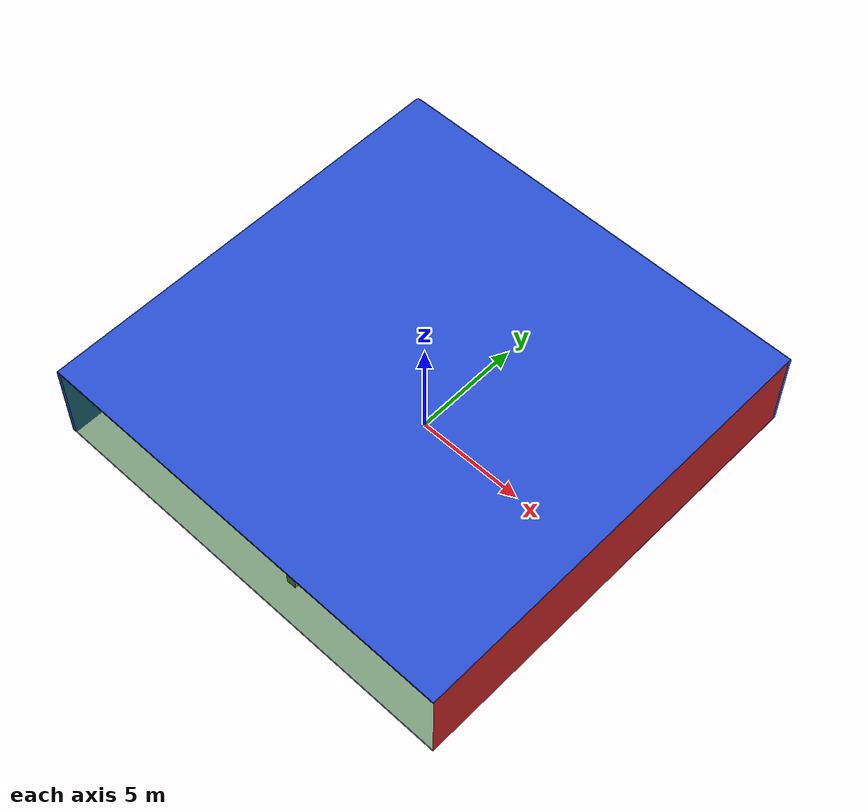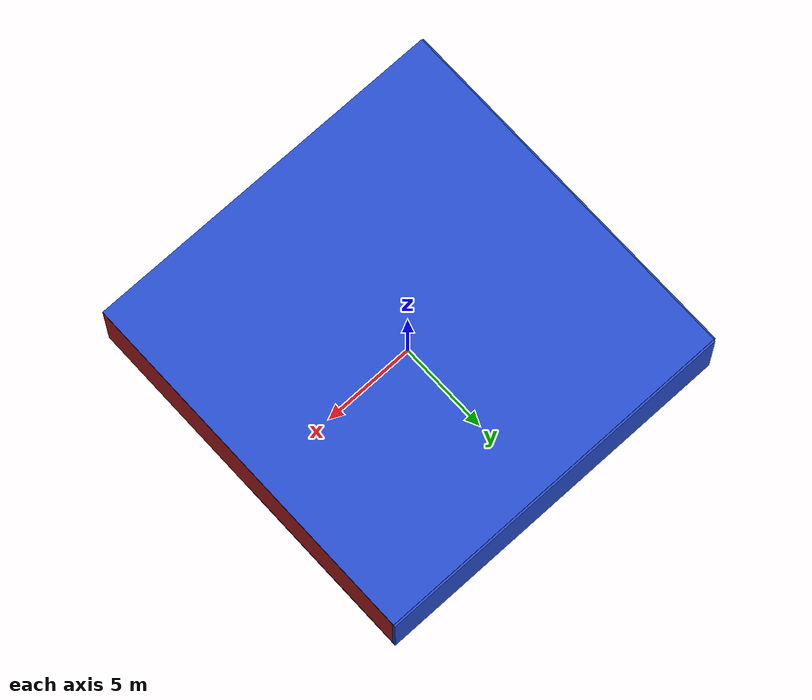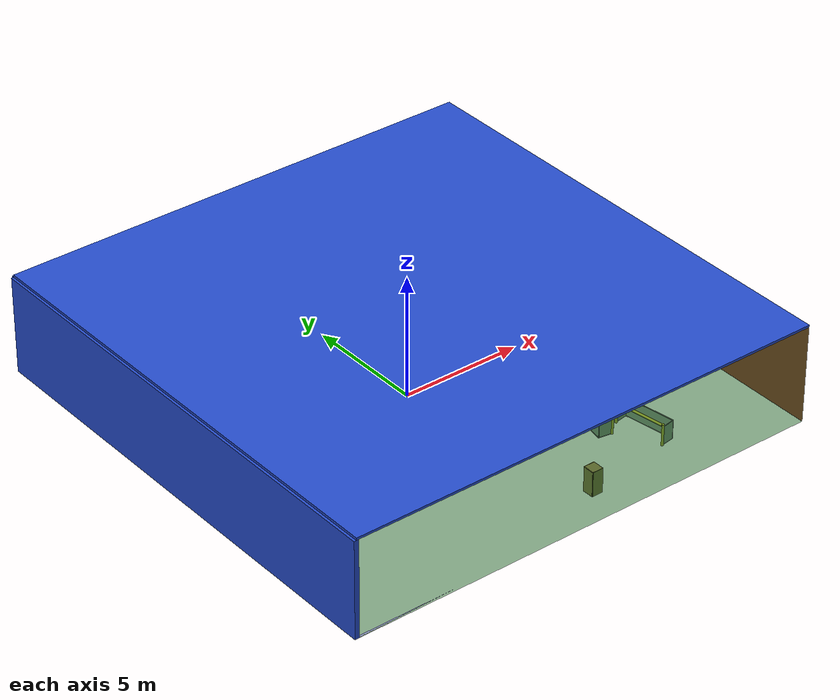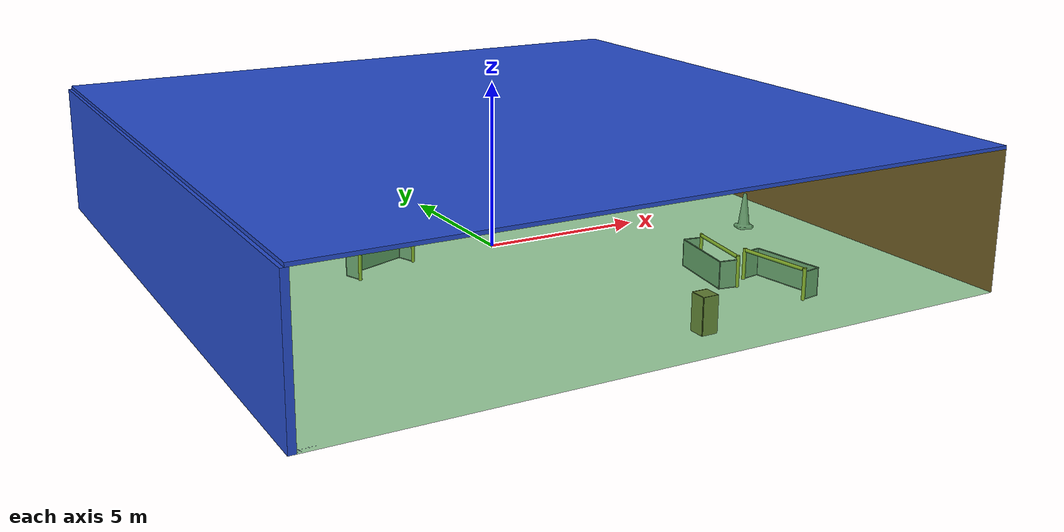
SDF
<sdf version="1.4">
 <world name="default">
  <physics type="ode">
   <max_step_size>0.001</max_step_size>
   <real_time_factor>1</real_time_factor>
   <real_time_update_rate>1000</real_time_update_rate>
   <gravity>0 0 -9.8</gravity>
  </physics>
  <scene><ambient>0.4 0.4 0.4 1</ambient><background>0.7 0.7 0.7 1</background><shadows>1</shadows></scene>
  <model name="Surrounding">
   <static>1</static>
   <link name="Ceiling">
    <collision name="Ceiling_Collision"><geometry><box><size>20 20 0.1</size></box></geometry></collision>
    <visual name="Ceiling_Visual">
     <geometry><box><size>20 20 0.1</size></box></geometry>
     <material>
      <script><uri>file://media/materials/scripts/gazebo.material</uri><name>Gazebo/BlueGlow</name></script>
     </material>
    </visual>
    <pose>0 0 4.05 0 0 0</pose>
   </link>
   <link name="Wall_South">
    <collision name="Wall_South_Collision">
     <geometry><box><size>20 0 4</size></box></geometry>
     <pose>0 0 2 0 -0 0</pose>
    </collision>
    <visual name="Wall_South_Visual">
     <pose>0 0 2 0 -0 0</pose>
     <geometry><box><size>20 0 4</size></box></geometry>
     <material>
      <script><uri>file://media/materials/scripts/gazebo.material</uri><name>Gazebo/GreenTransparent</name></script>
     </material>
    </visual>
    <velocity_decay><linear>0</linear><angular>0</angular></velocity_decay>
    <pose>0 -10 0 0 -0 0</pose>
   </link>
   <link name="Wall_East">
    <collision name="Wall_21_Collision">
     <geometry><box><size>20 0 4</size></box></geometry>
     <pose>0 0 2 0 -0 0</pose>
    </collision>
    <visual name="Wall_21_Visual">
     <pose>0 0 2 0 -0 0</pose>
     <geometry><box><size>20 0 4</size></box></geometry>
     <material>
      <script><uri>file://media/materials/scripts/gazebo.material</uri><name>Gazebo/RedGlow</name></script>
     </material>
    </visual>
    <velocity_decay><linear>0</linear><angular>0</angular></velocity_decay>
    <pose>10 0 0 0 -0 1.5708</pose>
   </link>
   <link name="Wall_North">
    <collision name="Wall_22_Collision">
     <geometry><box><size>20 0.2 4</size></box></geometry>
     <pose>0 0 2 0 -0 0</pose>
    </collision>
    <visual name="Wall_22_Visual">
     <pose>0 0 2 0 -0 0</pose>
     <geometry><box><size>20 0.2 4</size></box></geometry>
     <material>
      <script><uri>file://media/materials/scripts/gazebo.material</uri><name>Gazebo/BlueGlow</name></script>
     </material>
    </visual>
    <velocity_decay><linear>0</linear><angular>0</angular></velocity_decay>
    <pose>0 10 0 0 -0 0</pose>
   </link>
   <link name="Wall_West">
    <collision name="Wall_23_Collision">
     <geometry><box><size>20 0.2 4</size></box></geometry>
     <pose>0 0 2 0 -0 0</pose>
    </collision>
    <visual name="Wall_23_Visual">
     <pose>0 0 2 0 -0 0</pose>
     <geometry><box><size>20 0.2 4</size></box></geometry>
     <material>
      <script><uri>file://media/materials/scripts/gazebo.material</uri><name>Gazebo/Blue</name></script>
     </material>
    </visual>
    <velocity_decay><linear>0</linear><angular>0</angular></velocity_decay>
    <pose>-10 0 0 0 0 -1.5708</pose>
   </link>
   <link name="Ground_link">
    <collision name="collision">
     <pose>0 0 .05 0 -0 0</pose>
     <geometry><box><size>20 20 0.1</size></box></geometry>
    </collision>
    <visual name="visual">
     <pose>0 0 .05 0 -0 0</pose>
     <geometry><box><size>20 20 0.1</size></box></geometry>
     <material>
      <script><uri>file://media/materials/scripts/gazebo.material</uri><name>Gazebo/BlueTransparent</name></script>
     </material>
    </visual>
   </link>
   <static>1</static>
  </model>
  <spherical_coordinates>
   <surface_model>EARTH_WGS84</surface_model>
   <latitude_deg>0</latitude_deg>
   <longitude_deg>0</longitude_deg>
   <elevation>0</elevation>
   <heading_deg>0</heading_deg>
  </spherical_coordinates>
  <light name="lightball_0" type="diffuse">
   <diffuse>0.8 0.8 0.8 1</diffuse>
   <specular>0.2 0.2 0.2 1</specular>
   <attenuation>
    <range>100</range>
    <constant>0.7</constant>
    <linear>0.01</linear>
    <quadratic>0.001</quadratic>
   </attenuation>
   <direction>-0.5 0.1 -0.9</direction>
   <pose>2.80840931719 -7.8402951861 3.67905784236 0 0 0</pose>
  </light>
  <light name="lightball_1" type="diffuse">
   <diffuse>0.8 0.8 0.8 1</diffuse>
   <specular>0.2 0.2 0.2 1</specular>
   <attenuation>
    <range>100</range>
    <constant>0.7</constant>
    <linear>0.01</linear>
    <quadratic>0.001</quadratic>
   </attenuation>
   <direction>-0.5 0.1 -0.9</direction>
   <pose>-1.7989444825 -8.87860830226 3.09443559032 0 0 0</pose>
  </light>
  <light name="lightball_2" type="diffuse">
   <diffuse>0.8 0.8 0.8 1</diffuse>
   <specular>0.2 0.2 0.2 1</specular>
   <attenuation>
    <range>100</range>
    <constant>0.7</constant>
    <linear>0.01</linear>
    <quadratic>0.001</quadratic>
   </attenuation>
   <direction>-0.5 0.1 -0.9</direction>
   <pose>-8.27431817287 4.9703126637 3.15642342062 0 0 0</pose>
  </light>
  <light name="lightball_3" type="diffuse">
   <diffuse>0.8 0.8 0.8 1</diffuse>
   <specular>0.2 0.2 0.2 1</specular>
   <attenuation>
    <range>100</range>
    <constant>0.7</constant>
    <linear>0.01</linear>
    <quadratic>0.001</quadratic>
   </attenuation>
   <direction>-0.5 0.1 -0.9</direction>
   <pose>-3.84042631513 3.10833653866 2.03838835459 0 0 0</pose>
  </light>
  <include>
   <uri>model://construction_cone</uri>
   <pose>-7.94170851985 -1.59242833922 0 0 0 1.29626749012</pose>
  </include>
  <include>
   <uri>model://robocup_3Dsim_goal</uri>
   <pose>-3.68725553212 -0.567748305298 0 0 0 1.93074172591</pose>
  </include>
  <include><uri>model://cabinet</uri><pose>-2.50886653014 0.991173507431 0 0 0 0.0839977959837</pose></include>
  <include><uri>model://cabinet</uri><pose>1.39598884206 -8.57711556241 0 0 0 3.13744405399</pose></include>
  <include>
   <uri>model://robocup_3Dsim_goal</uri>
   <pose>4.94254321708 -6.97714116472 0 0 0 0.16130525714</pose>
  </include>
  <include>
   <uri>model://robocup_3Dsim_goal</uri>
   <pose>4.36909500511 -5.32903144097 0 0 0 2.9859616067</pose>
  </include>
  <include>
   <uri>model://construction_cone</uri>
   <pose>7.88883636385 -2.08923654075 0 0 0 1.34161398511</pose>
  </include>
 </world>
</sdf>

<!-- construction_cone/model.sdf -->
<sdf version="1.5">
  <model name="Construction Cone">
    <link name="link">
      <collision name="collision">
        <geometry>
          <mesh>
            <scale>10 10 10</scale>
            <uri>file://isr-testbed/construction_cone/meshes/construction_cone.dae</uri>
          </mesh>
        </geometry>
      </collision>
      <visual name="visual">
        <geometry>
          <mesh>
            <scale>10 10 10</scale>
            <uri>file://isr-testbed/construction_cone/meshes/construction_cone.dae</uri>
          </mesh>
        </geometry>
      </visual>
    </link>
  </model>
</sdf>

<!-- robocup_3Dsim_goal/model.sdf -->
<sdf version="1.5">
  <model name="robocup_3d_goal">
    <static>true</static>
    <link name="left_post">
      <pose>0 1.05 0.45 0 0 0</pose>
      <collision name="collision">
        <geometry>
          <cylinder>
            <radius>0.05</radius>
            <length>0.9</length>
          </cylinder>
        </geometry>
      </collision>
      <visual name="visual">
        <geometry>
          <cylinder>
            <radius>0.05</radius>
            <length>0.9</length>
          </cylinder>
        </geometry>
        <material>
          <script>
            <uri>file://media/materials/scripts/gazebo.material</uri>
            <name>Gazebo/ZincYellow</name>
          </script>
        </material>
      </visual>
    </link>
    <link name="left_support_horiz_lower">
      <pose>0.30 1.05 0.01 0 0 0</pose>
      <collision name="collision">
        <geometry>
          <box>
            <size>0.50 0.02 0.02</size>
          </box>
        </geometry>
      </collision>
      <visual name="visual">
        <geometry>
          <box>
            <size>0.50 0.02 0.02</size>
          </box>
        </geometry>
        <material>
          <script>
            <uri>file://media/materials/scripts/gazebo.material</uri>
            <name>Gazebo/White</name>
          </script>
        </material>
      </visual>
    </link>
    <link name="left_support_horiz_upper">
      <pose>0.30 1.05 0.79 0 0 0</pose>
      <collision name="collision">
        <geometry>
          <box>
            <size>0.50 0.02 0.02</size>
          </box>
        </geometry>
      </collision>
      <visual name="visual">
        <geometry>
          <box>
            <size>0.50 0.02 0.02</size>
          </box>
        </geometry>
        <material>
          <script>
            <uri>file://media/materials/scripts/gazebo.material</uri>
            <name>Gazebo/White</name>
          </script>
        </material>
      </visual>
    </link>
    <link name="left_support_vertical">
      <pose>0.56 1.05 0.4 0 1.5708 0</pose>
      <collision name="collision">
        <geometry>
          <box>
            <size>0.80 0.02 0.02</size>
          </box>
        </geometry>
      </collision>
      <visual name="visual">
        <geometry>
          <box>
            <size>0.80 0.02 0.02</size>
          </box>
        </geometry>
        <material>
          <script>
            <uri>file://media/materials/scripts/gazebo.material</uri>
            <name>Gazebo/White</name>
          </script>
        </material>
      </visual>
    </link>
    <link name="right_support_horiz_lower">
      <pose>0.30 -1.05 0.01 0 0 0</pose>
      <collision name="collision">
        <geometry>
          <box>
            <size>0.50 0.02 0.02</size>
          </box>
        </geometry>
      </collision>
      <visual name="visual">
        <geometry>
          <box>
            <size>0.50 0.02 0.02</size>
          </box>
        </geometry>
        <material>
          <script>
            <uri>file://media/materials/scripts/gazebo.material</uri>
            <name>Gazebo/White</name>
          </script>
        </material>
      </visual>
    </link>
    <link name="right_support_horiz_upper">
      <pose>0.30 -1.05 0.79 0 0 0</pose>
      <collision name="collision">
        <geometry>
          <box>
            <size>0.50 0.02 0.02</size>
          </box>
        </geometry>
      </collision>
      <visual name="visual">
        <geometry>
          <box>
            <size>0.50 0.02 0.02</size>
          </box>
        </geometry>
        <material>
          <script>
            <uri>file://media/materials/scripts/gazebo.material</uri>
            <name>Gazebo/White</name>
          </script>
        </material>
      </visual>
    </link>
    <link name="right_support_vertical">
      <pose>0.56 -1.05 0.4 0 1.5708 0</pose>
      <collision name="collision">
        <geometry>
          <box>
            <size>0.80 0.02 0.02</size>
          </box>
        </geometry>
      </collision>
      <visual name="visual">
        <geometry>
          <box>
            <size>0.80 0.02 0.02</size>
          </box>
        </geometry>
        <material>
          <script>
            <uri>file://media/materials/scripts/gazebo.material</uri>
            <name>Gazebo/White</name>
          </script>
        </material>
      </visual>
    </link>
    <link name="center_support_horiz_lower">
      <pose>0.56 0 0.01 0 1.5708 0</pose>
      <collision name="collision">
        <geometry>
          <box>
            <size>0.02 2.08 0.02</size>
          </box>
        </geometry>
      </collision>
      <visual name="visual">
        <geometry>
          <box>
            <size>0.02 2.08 0.02</size>
          </box>
        </geometry>
        <material>
          <script>
            <uri>file://media/materials/scripts/gazebo.material</uri>
            <name>Gazebo/White</name>
          </script>
        </material>
      </visual>
    </link>
    <link name="center_support_horiz_upper">
      <pose>0.56 0 0.79 0 1.5708 0</pose>
      <collision name="collision">
        <geometry>
          <box>
            <size>0.02 2.08 0.02</size>
          </box>
        </geometry>
      </collision>
      <visual name="visual">
        <geometry>
          <box>
            <size>0.02 2.08 0.02</size>
          </box>
        </geometry>
        <material>
          <script>
            <uri>file://media/materials/scripts/gazebo.material</uri>
            <name>Gazebo/White</name>
          </script>
        </material>
      </visual>
    </link>
    <link name="right_post">
      <pose>0 -1.05 0.45 0 0 0</pose>
      <collision name="collision">
        <geometry>
          <cylinder>
            <radius>0.05</radius>
            <length>0.9</length>
          </cylinder>
        </geometry>
      </collision>
      <visual name="visual">
        <geometry>
          <cylinder>
            <radius>0.05</radius>
            <length>0.9</length>
          </cylinder>
        </geometry>
        <material>
          <script>
            <uri>file://media/materials/scripts/gazebo.material</uri>
            <name>Gazebo/ZincYellow</name>
          </script>
        </material>
      </visual>
    </link>
    <link name="crossbar">
      <pose>0 0 0.85 1.57 1.57 0</pose>
      <collision name="collision">
        <geometry>
          <cylinder>
            <radius>0.05</radius>
            <length>2.0</length>
          </cylinder>
        </geometry>
      </collision>
      <visual name="visual">
        <geometry>
          <cylinder>
            <radius>0.05</radius>
            <length>2.0</length>
          </cylinder>
        </geometry>
        <material>
          <script>
            <uri>file://media/materials/scripts/gazebo.material</uri>
            <name>Gazebo/ZincYellow</name>
          </script>
        </material>
      </visual>
    </link>
    <link name="center_net">
      <pose>0.56 0 0.40 0 0 0</pose>
      <collision name="collision">
        <geometry>
          <box>
            <size>0.01 2.1 0.80</size>
          </box>
        </geometry>
      </collision>
      <visual name="visual">
        <geometry>
          <box>
            <size>0.01 2.1 0.80</size>
          </box>
        </geometry>
        <material>
          <script>
            <uri>model://../model_source/models/robocup09_spl_field/materials/scripts/</uri>
            <uri>model://../model_source/models/robocup09_spl_field/materials/textures/</uri>
            <name>RoboCup/Net</name>
          </script>
        </material>
      </visual>
    </link>
    <link name="left_net">
      <pose>0.30 1.05 0.40 0 0 0</pose>
      <collision name="collision">
        <geometry>
          <box>
            <size>0.50 0.01 0.76</size>
          </box>
        </geometry>
      </collision>
      <visual name="visual">
        <geometry>
          <box>
            <size>0.50 0.01 0.76</size>
          </box>
        </geometry>
        <material>
          <script>
            <uri>model://../model_source/models/robocup09_spl_field/materials/scripts/</uri>
            <uri>model://../model_source/models/robocup09_spl_field/materials/textures/</uri>
            <name>RoboCup/Net</name>
          </script>
        </material>
      </visual>
    </link>
    <link name="right_net">
      <pose>0.30 -1.05 0.40 0 0 0</pose>
      <collision name="collision">
        <geometry>
          <box>
            <size>0.50 0.01 0.76</size>
          </box>
        </geometry>
      </collision>
      <visual name="visual">
        <geometry>
          <box>
            <size>0.50 0.01 0.76</size>
          </box>
        </geometry>
        <material>
          <script>
            <uri>model://../model_source/models/robocup09_spl_field/materials/scripts/</uri>
            <uri>model://../model_source/models/robocup09_spl_field/materials/textures/</uri>
            <name>RoboCup/Net</name>
          </script>
        </material>
      </visual>
    </link>
  </model>
</sdf>

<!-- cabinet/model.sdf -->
<sdf version="1.5">
  <model name="cabinet">
    <static>true</static>
    <link name="cabinet_bottom_plate">
      <inertial>
        <pose>0 0 -1 0 0 0</pose>
        <inertia>
          <ixx>2.050000</ixx>
          <ixy>0</ixy>
          <ixz>0</ixz>
          <iyy>2.050000</iyy>
          <iyz>0</iyz>
          <izz>2.050000</izz>
        </inertia>
        <mass>25.000000</mass>
      </inertial>
      <collision name="cabinet_bottom_plate_geom">
        <pose>0 0 0.010000 0 0 0</pose>
        <geometry>
          <box>
            <size>0.450000 0.450000 0.020000</size>
          </box>
        </geometry>
      </collision>
      <visual name="cabinet_bottom_plate_geom_visual">
        <pose>0 0 0.010000 0 0 0</pose>
        <geometry>
          <box>
            <size>0.450000 0.450000 0.020000</size>
          </box>
        </geometry>
        <material>
          <script>
            <uri>model://media/materials/scripts/gazebo.material</uri>
            <name>Gazebo/Wood</name>
          </script>
        </material>
      </visual>
      <collision name="cabinet_bottom_plate_geom_cabinet_back_plate">
        <pose>0.235000 0 0.510000 0 0 0</pose>
        <geometry>
          <box>
            <size>0.020000 0.450000 1.020000</size>
          </box>
        </geometry>
      </collision>
      <visual name="cabinet_bottom_plate_geom_cabinet_back_plate_visual">
        <pose>0.235000 0 0.510000 0 0 0</pose>
        <geometry>
          <box>
            <size>0.020000 0.450000 1.020000</size>
          </box>
        </geometry>
        <material>
          <script>
            <uri>model://media/materials/scripts/gazebo.material</uri>
            <name>Gazebo/Wood</name>
          </script>
        </material>
      </visual>
      <collision name="cabinet_bottom_plate_geom_cabinet_left_plate">
        <pose>0 0.235000 0.510000 0 0 0</pose>
        <geometry>
          <box>
            <size>0.450000 0.020000 1.020000</size>
          </box>
        </geometry>
      </collision>
      <visual name="cabinet_bottom_plate_geom_cabinet_left_plate_visual">
        <pose>0 0.235000 0.510000 0 0 0</pose>
        <geometry>
          <box>
            <size>0.450000 0.020000 1.020000</size>
          </box>
        </geometry>
        <material>
          <script>
            <uri>model://media/materials/scripts/gazebo.material</uri>
            <name>Gazebo/Wood</name>
          </script>
        </material>
      </visual>
      <collision name="cabinet_bottom_plate_geom_cabinet_middle_plate">
        <pose>0 0 0.510000 0 0 0</pose>
        <geometry>
          <box>
            <size>0.450000 0.450000 0.020000</size>
          </box>
        </geometry>
      </collision>
      <visual name="cabinet_bottom_plate_geom_cabinet_middle_plate_visual">
        <pose>0 0 0.510000 0 0 0</pose>
        <geometry>
          <box>
            <size>0.450000 0.450000 0.020000</size>
          </box>
        </geometry>
        <material>
          <script>
            <uri>model://media/materials/scripts/gazebo.material</uri>
            <name>Gazebo/Wood</name>
          </script>
        </material>
      </visual>
      <collision name="cabinet_bottom_plate_geom_cabinet_right_plate">
        <pose>0 -0.235000 0.510000 0 0 0</pose>
        <geometry>
          <box>
            <size>0.450000 0.020000 1.020000</size>
          </box>
        </geometry>
      </collision>
      <visual name="cabinet_bottom_plate_geom_cabinet_right_plate_visual">
        <pose>0 -0.235000 0.510000 0 0 0</pose>
        <geometry>
          <box>
            <size>0.450000 0.020000 1.020000</size>
          </box>
        </geometry>
        <material>
          <script>
            <uri>model://media/materials/scripts/gazebo.material</uri>
            <name>Gazebo/Wood</name>
          </script>
        </material>
      </visual>
      <collision name="cabinet_bottom_plate_geom_cabinet_top_plate">
        <pose>0 0 1.010000 0 0 0</pose>
        <geometry>
          <box>
            <size>0.450000 0.450000 0.020000</size>
          </box>
        </geometry>
      </collision>
      <visual name="cabinet_bottom_plate_geom_cabinet_top_plate_visual">
        <pose>0 0 1.010000 0 0 0</pose>
        <geometry>
          <box>
            <size>0.450000 0.450000 0.020000</size>
          </box>
        </geometry>
        <material>
          <script>
            <uri>model://media/materials/scripts/gazebo.material</uri>
            <name>Gazebo/Wood</name>
          </script>
        </material>
      </visual>
    </link>
  </model>
</sdf>
